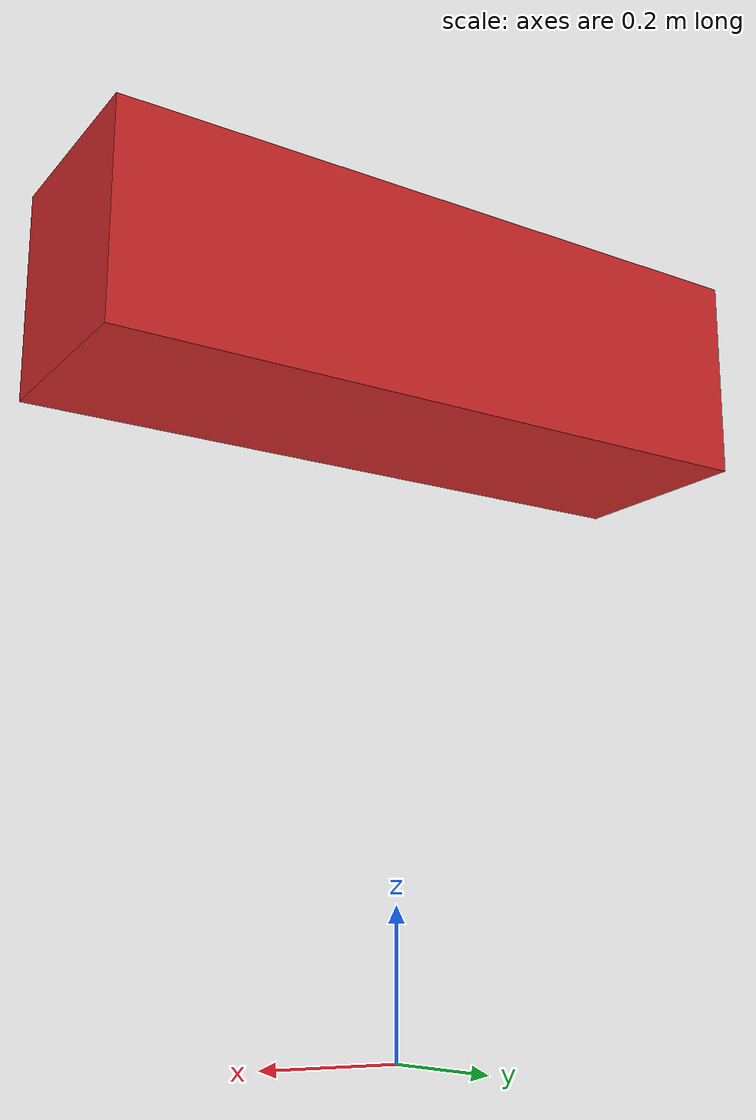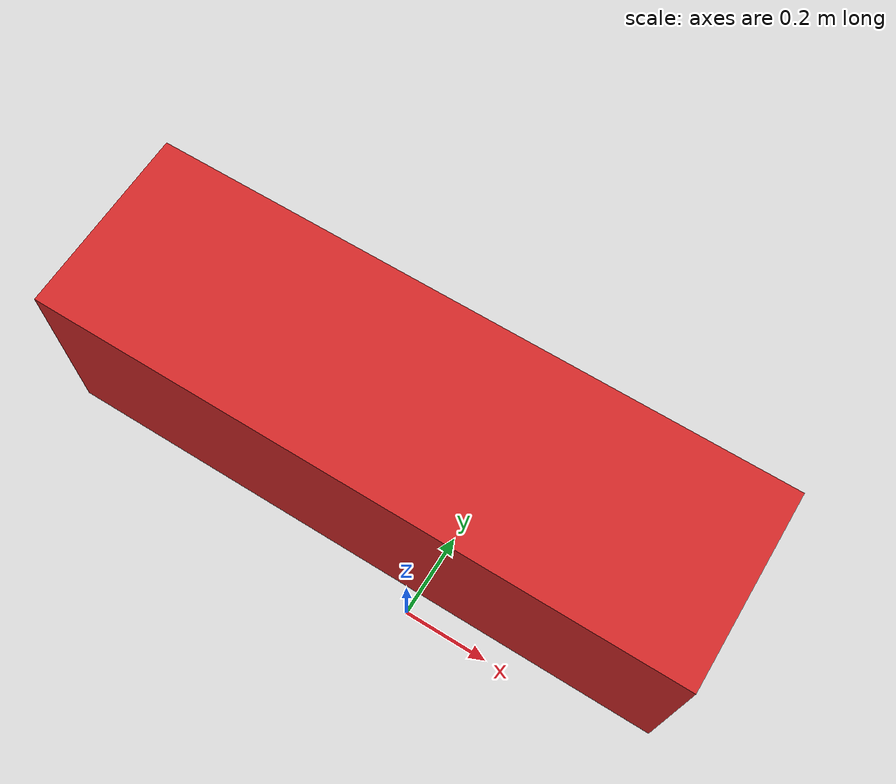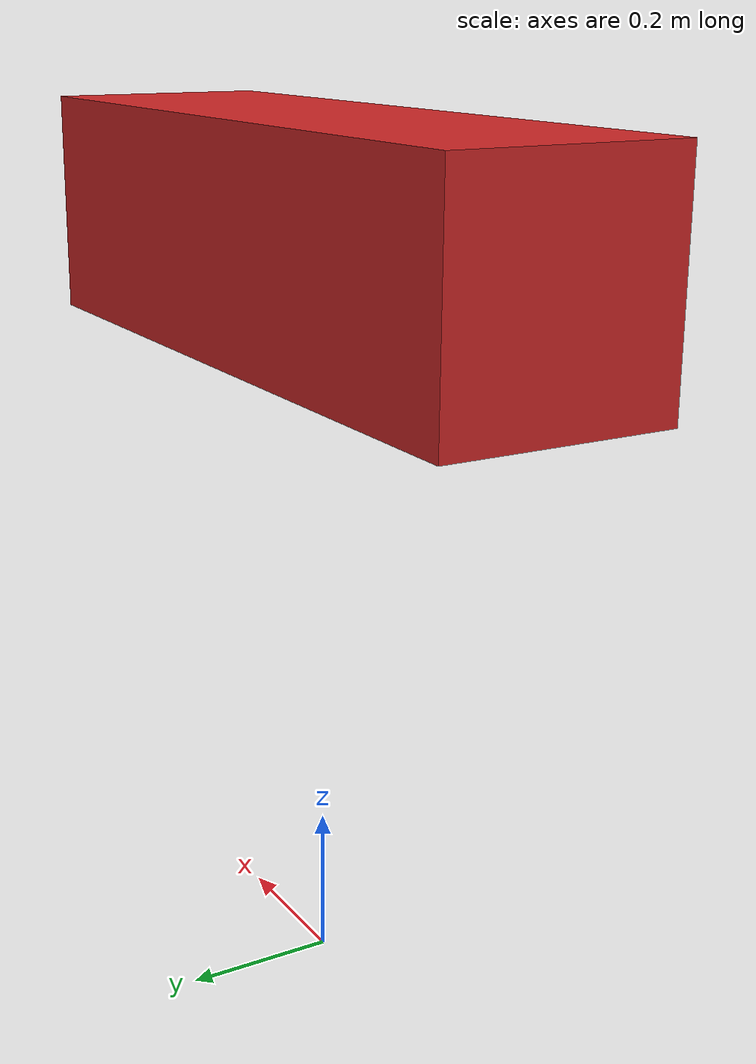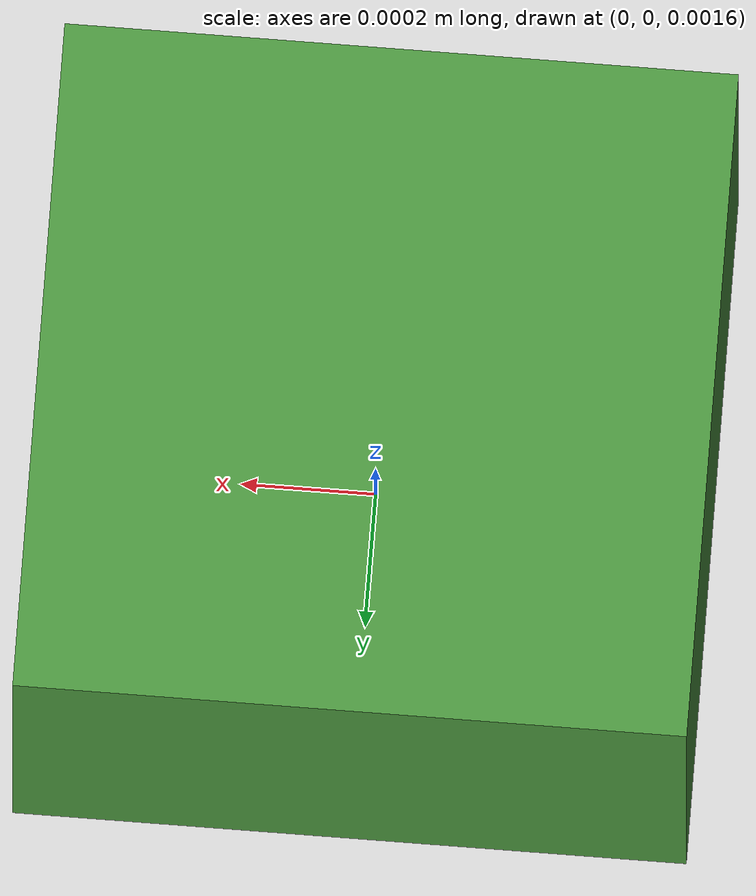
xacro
<?xml version="1.0"?>
<robot name="pr2"
       xmlns:xi="http://www.w3.org/2001/XInclude"
       xmlns:gazebo="http://playerstage.sourceforge.net/gazebo/xmlschema/#gz"
       xmlns:model="http://playerstage.sourceforge.net/gazebo/xmlschema/#model"
       xmlns:sensor="http://playerstage.sourceforge.net/gazebo/xmlschema/#sensor"
       xmlns:body="http://playerstage.sourceforge.net/gazebo/xmlschema/#body"
       xmlns:geom="http://playerstage.sourceforge.net/gazebo/xmlschema/#geom"
       xmlns:joint="http://playerstage.sourceforge.net/gazebo/xmlschema/#joint"
       xmlns:interface="http://playerstage.sourceforge.net/gazebo/xmlschema/#interface"
       xmlns:rendering="http://playerstage.sourceforge.net/gazebo/xmlschema/#rendering"
       xmlns:renderable="http://playerstage.sourceforge.net/gazebo/xmlschema/#renderable"
       xmlns:controller="http://playerstage.sourceforge.net/gazebo/xmlschema/#controller"
       xmlns:physics="http://playerstage.sourceforge.net/gazebo/xmlschema/#physics">

  <link name="world"/>
  <joint name="base_block_joint" type="fixed">
    <parent link="world" />
    <origin xyz="0 0 0.002 " rpy="0 0 0" />
    <child link="base_block" />
  </joint>
  <link name="base_block">
    <inertial>
      <mass value="1000" />
      <origin xyz="0 0 0" />
      <inertia ixx="100"  ixy="0"  ixz="0" iyy="100" iyz="0" izz="100" />
    </inertial>
    <visual>
      <origin xyz="0 0 0" rpy="0 0 0" />
      <geometry>
        <box size="0.001 0.001 0.001" />
      </geometry>
    </visual>
    <collision>
      <origin xyz="0 0 0" rpy="0.0 0.0 0.0" />
      <geometry>
        <box size="0.001 0.001 0.001" />
      </geometry>
    </collision>
  </link>
  <gazebo reference="base_block">
    <material>Gazebo/GrassFloor</material>
  </gazebo>

  <joint name="link1_joint" type="revolute" >
    <axis xyz="1 0 0" />
    <limit upper="2" lower="-2" effort="100" velocity="5" />
    <parent link="base_block" />
    <origin xyz="0 0 1" rpy="0 0 0" />
    <child link="link1" />
  </joint>
  <link name="link1">
    <inertial >
      <mass value="10" />
      <origin xyz="0 0 0" />
      <inertia  ixx="1.0" ixy="0.0"  ixz="0.0"  iyy="0.1"  iyz="0.0"  izz="0.1" />
    </inertial>
    <visual >
      <origin xyz="0 0 0" rpy="0 0 0" />
      <geometry>
        <box size="1.0 0.3 0.3" />
      </geometry>
    </visual>
    <collision >
      <origin xyz="0.5 0 0" rpy="0.0 0.0 0.0 " />
      <geometry>
        <box size="1.0 0.3 0.3" />
      </geometry>
    </collision>
  </link>
  <gazebo reference="link1">
    <material>Gazebo/Red</material>
    <turnGravityOff>true</turnGravityOff>
  </gazebo>

  <gazebo>
      <!-- PR2_ACTARRAY -->
      <controller:gazebo_ros_controller_manager name="gazebo_ros_controller_manager" plugin="libgazebo_ros_controller_manager.so">
        <alwaysOn>true</alwaysOn>
        <updateRate>1000.0</updateRate>
      </controller:gazebo_ros_controller_manager>

      <!-- gazebo_ros_p3d for position groundtruth -->
      <controller:gazebo_ros_p3d name="p3d_link1_controller" plugin="libgazebo_ros_p3d.so">
          <alwaysOn>true</alwaysOn>
          <updateRate>1000.0</updateRate>
          <bodyName>link1</bodyName>
          <topicName>link1_pose</topicName>
          <frameName>map</frameName>
          <interface:position name="p3d_link1_position"/>
      </controller:gazebo_ros_p3d>
  </gazebo>
  <!-- mechanism controls -->
  <include filename="./single_link.transmission.xacro" />

</robot>
